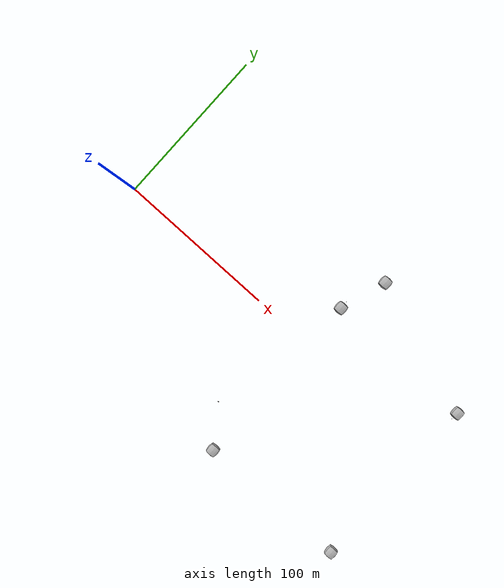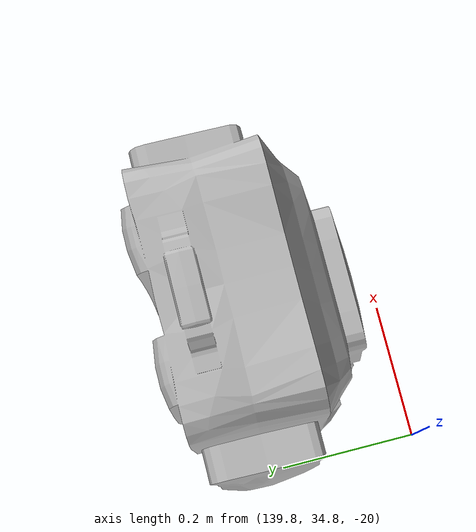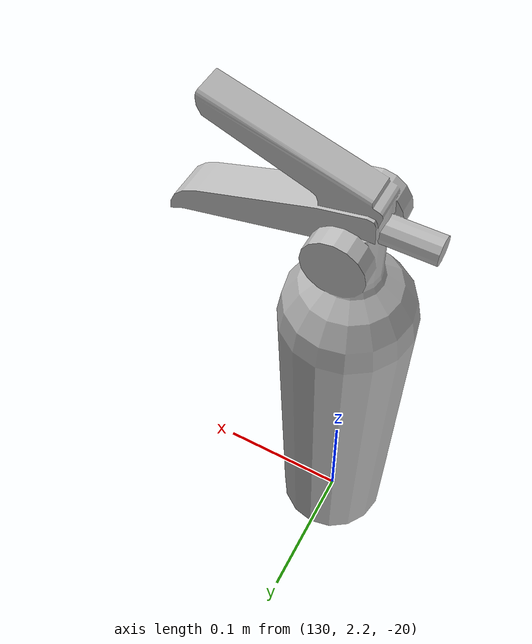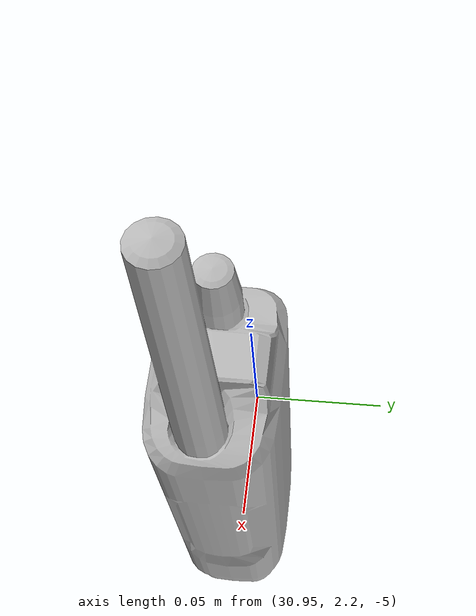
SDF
<sdf version="1.6">
 <world name="tunnel_practice_1">
  <scene>
   <ambient>0.2 0.2 0.2 1.0</ambient>
   <background>0.34 0.39 0.43 1.0</background>
   <grid>false</grid>
   <origin_visual>false</origin_visual>
  </scene>
  <light name="user_spot_light_0" type="spot">
   <pose>12 0 15 0 0.65 0</pose>
   <diffuse>1 1 1 1</diffuse>
   <specular>0.1 0.1 0.1 1</specular>
   <direction>0 0 -1</direction>
   <attenuation>
    <range>30</range>
    <constant>0.001</constant>
    <linear>0.01</linear>
    <quadratic>0.000</quadratic>
   </attenuation>
   <spot><inner_angle>0.0</inner_angle><outer_angle>1.5</outer_angle><falloff>0.01</falloff></spot>
  </light>
  <include><name>artifact_origin</name><pose>2 4 0.5 0 0 0</pose><uri>model://fiducial</uri></include>
  <include><name>backpack_1</name><pose>140 35 -20 0 0 0</pose><uri>model://Backpack</uri></include>
  <include><name>toolbox_1</name><pose>240 25 -35 0 0 0</pose><uri>model://Toolbox</uri></include>
  <include><name>extinguisher_1</name><pose>130 2.2 -20 0 0 0</pose><uri>model://Extinguisher</uri></include>
  <include><name>valve_1</name><pose>122.5 -65 -30 0 0 -1.5708</pose><uri>model://Valve</uri></include>
  <include><name>radio_1</name><pose>31 2.2 -5 0 0 0</pose><uri>model://Radio</uri></include>
  <include><uri>model://tunnel_tile_blocker</uri><name>blocker_1</name><pose>140 30 -20 0 0 0</pose></include>
  <include><uri>model://tunnel_tile_blocker</uri><name>blocker_2</name><pose>150 60 -20 0 0 0</pose></include>
  <include><uri>model://tunnel_tile_blocker</uri><name>blocker_3</name><pose>140 -90 -30 0 0 0</pose></include>
  <include><uri>model://tunnel_tile_blocker</uri><name>blocker_4</name><pose>240 30 -35 0 0 0</pose></include>
  <include><uri>model://tunnel_tile_blocker</uri><name>blocker_5</name><pose>240 -90 -40 0 0 0</pose></include>
  <plugin name="game_logic_plugin" filename="libGameLogicPlugin.so">
   <artifact><name>backpack_1</name><type>TYPE_BACKPACK</type></artifact>
   <artifact><name>toolbox_1</name><type>TYPE_TOOLBOX</type></artifact>
   <artifact><name>extinguisher_1</name><type>TYPE_EXTINGUISHER</type></artifact>
   <artifact><name>valve_1</name><type>TYPE_VALVE</type></artifact>
   <artifact><name>radio_1</name><type>TYPE_RADIO</type></artifact>
  </plugin>
  <plugin name="comms_broker_plugin" filename="libCommsBrokerPlugin.so">
   <comms_model>
    <comms_model_type>visibility_range</comms_model_type>
    <range_config>
     <max_range>500.0</max_range>
     <fading_exponent>2.5</fading_exponent>
     <L0>40</L0>
     <sigma>10.0</sigma>
    </range_config>
    <visibility_config>
     <visibility_cost_to_fading_exponent>0.2</visibility_cost_to_fading_exponent>
     <comms_cost_max>15</comms_cost_max>
    </visibility_config>
    <radio_config>
     <capacity>1000000</capacity>
     <tx_power>20</tx_power>
     <noise_floor>-90</noise_floor>
     <modulation>QPSK</modulation>
    </radio_config>
   </comms_model>
  </plugin>
  <plugin name="ros_interface_plugin" filename="librotors_gazebo_ros_interface_plugin.so"/>
  <wind><linear_velocity>0 1 0</linear_velocity></wind>
  <plugin name="wind" filename="libWindPlugin.so">
   <horizontal>
    <magnitude>
     <time_for_rise>10</time_for_rise>
     <sin><amplitude_percent>0.05</amplitude_percent><period>60</period></sin>
     <noise type="gaussian"><mean>0</mean><stddev>0.0002</stddev></noise>
    </magnitude>
    <direction>
     <time_for_rise>30</time_for_rise>
     <sin><amplitude>5</amplitude><period>20</period></sin>
     <noise type="gaussian"><mean>0</mean><stddev>0.03</stddev></noise>
    </direction>
   </horizontal>
   <vertical><noise type="gaussian"><mean>0</mean><stddev>0.03</stddev></noise></vertical>
  </plugin>
 </world>
</sdf>

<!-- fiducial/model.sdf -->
<sdf version='1.6'>
  <model name='fiducial'>
    <static>true</static>
    <link name='link'>
    </link>
  </model>
</sdf>

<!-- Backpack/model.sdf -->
<sdf version='1.6'>
  <model name='Backpack'>
    <static>true</static>
    <link name='link'>
      <collision name='collision'>
        <geometry>
          <mesh>
            <uri>model://Backpack/meshes/Backpack.dae</uri>
          </mesh>
        </geometry>
      </collision>
      <visual name='visual'>
        <geometry>
          <mesh>
            <uri>model://Backpack/meshes/Backpack.dae</uri>
          </mesh>
        </geometry>
      </visual>
    </link>
  </model>
</sdf>

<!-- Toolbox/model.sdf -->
<sdf version='1.6'>
  <model name='Toolbox'>
    <static>true</static>
    <link name='link'>
      <collision name='collision'>
        <geometry>
          <mesh>
            <uri>model://Toolbox/meshes/Toolbox.dae</uri>
          </mesh>
        </geometry>
      </collision>
      <visual name='visual'>
        <geometry>
          <mesh>
            <uri>model://Toolbox/meshes/Toolbox.dae</uri>
          </mesh>
        </geometry>
      </visual>
    </link>
  </model>
</sdf>

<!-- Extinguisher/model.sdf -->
<sdf version='1.6'>
  <model name='Extinguisher'>
    <static>true</static>
    <link name='link'>
      <collision name='collision'>
        <geometry>
          <mesh>
            <uri>model://Extinguisher/meshes/Extinguisher.dae</uri>
          </mesh>
        </geometry>
      </collision>
      <visual name='visual'>
        <geometry>
          <mesh>
            <uri>model://Extinguisher/meshes/Extinguisher.dae</uri>
          </mesh>
        </geometry>
      </visual>
    </link>
  </model>
</sdf>

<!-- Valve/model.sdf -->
<sdf version='1.6'>
  <model name='Valve'>
    <static>true</static>
    <link name='link'>
      <collision name='collision'>
        <geometry>
          <mesh>
            <uri>model://Valve/meshes/Valve.dae</uri>
          </mesh>
        </geometry>
      </collision>
      <visual name='visual'>
        <geometry>
          <mesh>
            <uri>model://Valve/meshes/Valve.dae</uri>
          </mesh>
        </geometry>
      </visual>
    </link>
  </model>
</sdf>

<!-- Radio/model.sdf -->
<sdf version='1.6'>
  <model name='Radio'>
    <static>true</static>
    <link name='link'>
      <collision name='collision'>
        <geometry>
          <mesh>
            <uri>model://Radio/meshes/Radio.dae</uri>
          </mesh>
        </geometry>
      </collision>
      <visual name='visual'>
        <geometry>
          <mesh>
            <uri>model://Radio/meshes/Radio.dae</uri>
          </mesh>
        </geometry>
        <plugin name='light_source_visualize' filename='libLightVisualPlugin.so'>
          <light>
            <id>light_source</id>
            <visualize>false</visualize>
          </light>
        </plugin>
      </visual>
      <light name='light_source' type='point'>
        <pose>0.0137 -0.02 0.109 0 0 0</pose>
        <attenuation>
          <range>2.0</range>
          <constant>0.2</constant>
          <linear>0.10</linear>
          <quadratic>0.1</quadratic>
        </attenuation>
        <diffuse>1 0 0 1</diffuse>
        <specular>1 0 0 1</specular>
      </light>
    </link>

    <plugin name='light_control' filename='libFlashLightPlugin.so'>
      <light>
        <id>link/light_source</id>
        <duration>1.0</duration>
        <interval>3.0</interval>
        <color>1 0 0</color>
      </light>
    </plugin>

  </model>
</sdf>

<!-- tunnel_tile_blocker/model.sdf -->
<sdf version="1.6">
  <model name="tunnel_tile_blocker">
    <static>true</static>
    <link name="link">
      <pose>0 0 0 0 0 0</pose>
      <collision name="collision">
        <geometry>
          <mesh>
            <uri>model://tunnel_tile_blocker/meshes/tunnel_tile_blocker.dae</uri>
          </mesh>
        </geometry>
      </collision>
      <visual name="visual">
        <geometry>
          <mesh>
            <uri>model://tunnel_tile_blocker/meshes/tunnel_tile_blocker.dae</uri>
          </mesh>
        </geometry>
      </visual>
    </link>
  </model>
</sdf>
